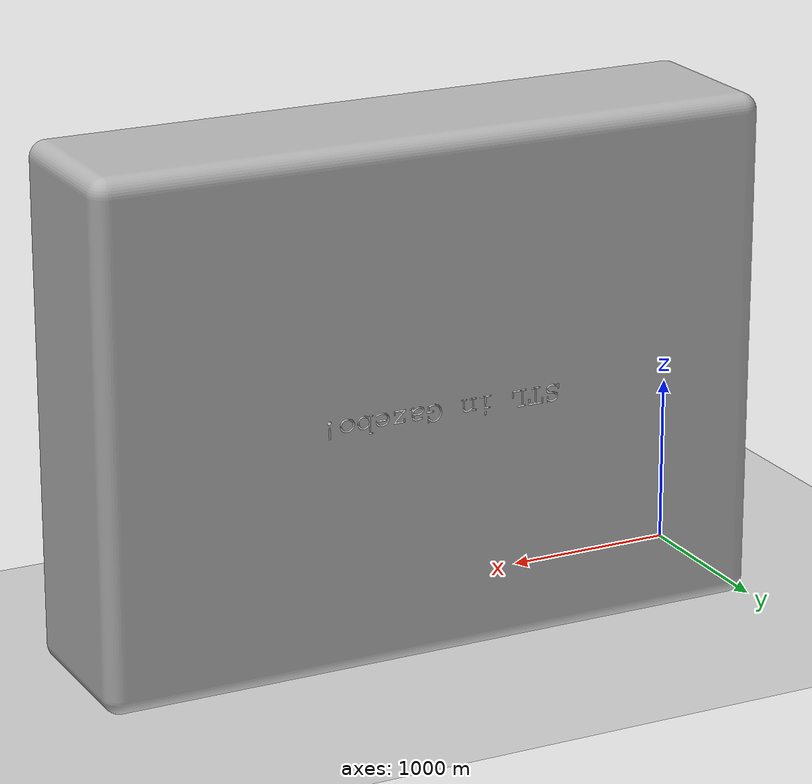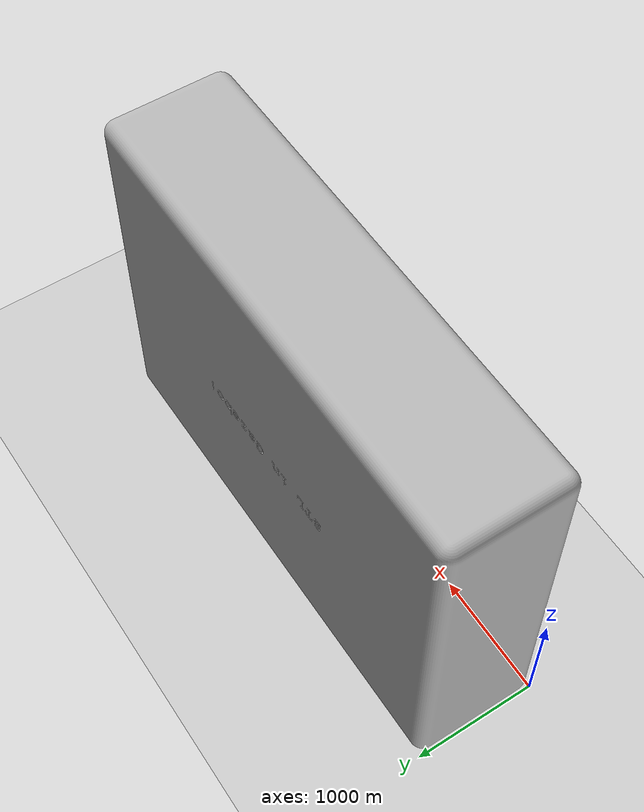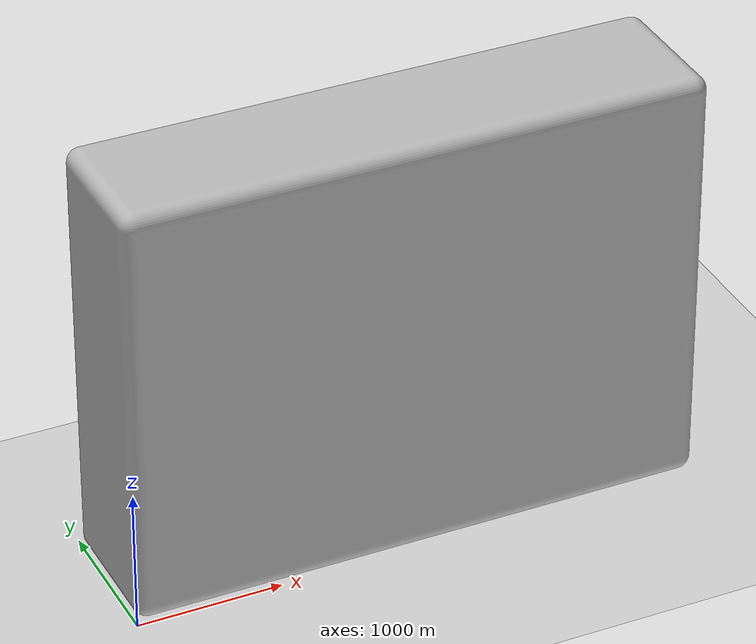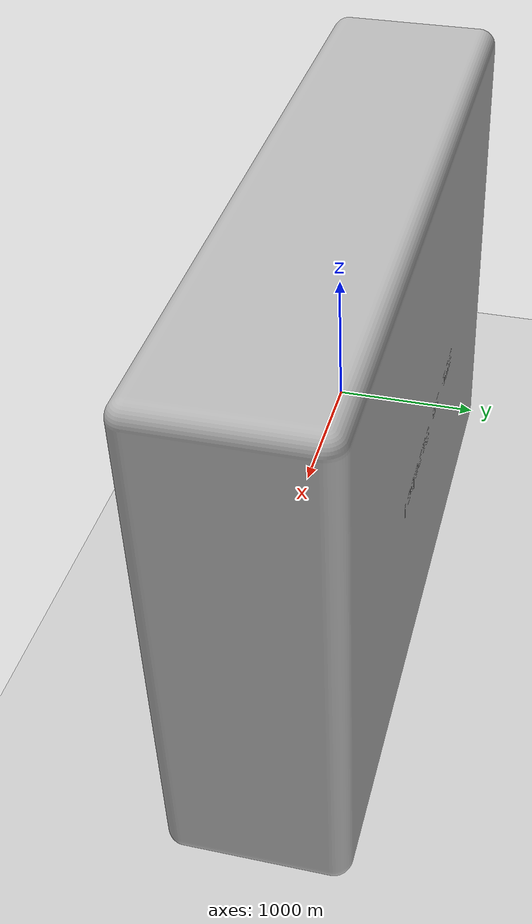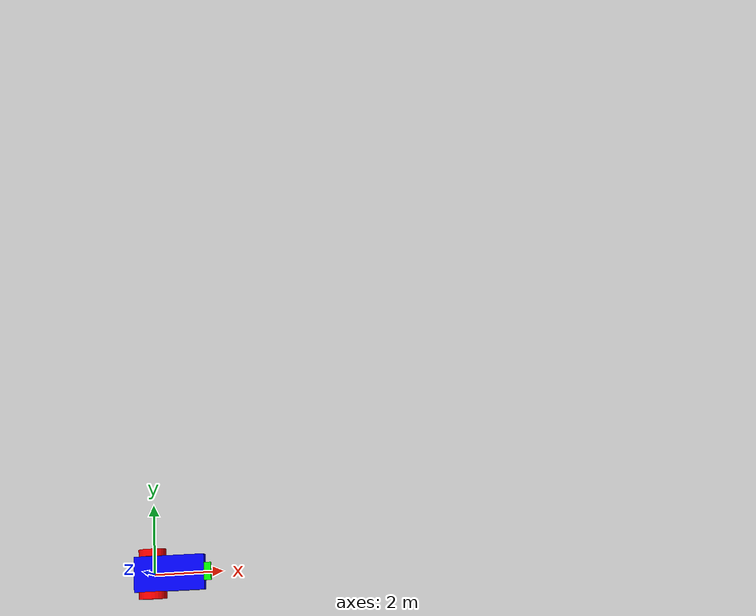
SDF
<sdf version="1.10">
 <world name="example_world">
  <physics name="1ms" type="ignored">
   <max_step_size>0.001</max_step_size>
   <real_time_factor>1.0</real_time_factor>
  </physics>
  <plugin filename="gz-sim-physics-system" name="gz::sim::systems::Physics"/>
  <plugin filename="gz-sim-user-commands-system" name="gz::sim::systems::UserCommands"/>
  <plugin filename="gz-sim-scene-broadcaster-system" name="gz::sim::systems::SceneBroadcaster"/>
  <plugin filename="gz-sim-sensors-system" name="gz::sim::systems::Sensors"/>
  <plugin filename="gz-sim-triggered-publisher-system" name="gz::sim::systems::TriggeredPublisher">
   <input type="gz.msgs.Int32" topic="/keyboard/keypress"><match field="data">16777235</match></input>
   <output type="gz.msgs.Twist" topic="/cmd_vel">linear: {x: 0.5}, angular: {z: 0.0}</output>
  </plugin>
  <plugin filename="gz-sim-triggered-publisher-system" name="gz::sim::systems::TriggeredPublisher">
   <input type="gz.msgs.Int32" topic="/keyboard/keypress"><match field="data">16777237</match></input>
   <output type="gz.msgs.Twist" topic="/cmd_vel">linear: {x: -0.5}, angular: {z: 0.0}</output>
  </plugin>
  <plugin filename="gz-sim-triggered-publisher-system" name="gz::sim::systems::TriggeredPublisher">
   <input type="gz.msgs.Int32" topic="/keyboard/keypress"><match field="data">16777234</match></input>
   <output type="gz.msgs.Twist" topic="/cmd_vel">linear: {x: 0}, angular: {z: 0.5}</output>
  </plugin>
  <plugin filename="gz-sim-triggered-publisher-system" name="gz::sim::systems::TriggeredPublisher">
   <input type="gz.msgs.Int32" topic="/keyboard/keypress"><match field="data">16777236</match></input>
   <output type="gz.msgs.Twist" topic="/cmd_vel">linear: {x: 0}, angular: {z: -0.5}</output>
  </plugin>
  <light type="directional" name="sun">
   <pose>0 0 10 0 0 0</pose>
   <diffuse>0.8 0.8 0.8 1</diffuse>
   <specular>0.2 0.2 0.2 1</specular>
   <attenuation>
    <range>1000</range>
    <constant>0.9</constant>
    <linear>0.01</linear>
    <quadratic>0.001</quadratic>
   </attenuation>
   <direction>-0.5 0.1 -0.9</direction>
  </light>
  <model name="ground_plane">
   <static>true</static>
   <link name="link">
    <collision name="collision"><geometry><plane><normal>0 0 1</normal></plane></geometry></collision>
    <visual name="visual">
     <geometry><plane><normal>0 0 1</normal><size>100 100</size></plane></geometry>
     <material>
      <ambient>0.8 0.8 0.8 1</ambient>
      <diffuse>0.8 0.8 0.8 1</diffuse>
      <specular>0.8 0.8 0.8 1</specular>
     </material>
    </visual>
   </link>
  </model>
  <model name="vehicle_blue" canonical_link="chassis">
   <plugin filename="gz-sim-diff-drive-system" name="gz::sim::systems::DiffDrive">
    <left_joint>left_wheel_joint</left_joint>
    <right_joint>right_wheel_joint</right_joint>
    <wheel_separation>1.2</wheel_separation>
    <wheel_radius>0.4</wheel_radius>
    <odom_publish_frequency>1</odom_publish_frequency>
    <topic>cmd_vel</topic>
   </plugin>
   <pose relative_to="world">0 0 0 0 0 0</pose>
   <link name="chassis">
    <pose relative_to="__model__">0.5 0 0.4 0 0 0</pose>
    <inertial>
     <mass>1.14395</mass>
     <inertia>
      <ixx>0.095329</ixx>
      <ixy>0</ixy>
      <ixz>0</ixz>
      <iyy>0.381317</iyy>
      <iyz>0</iyz>
      <izz>0.476646</izz>
     </inertia>
    </inertial>
    <visual name="visual">
     <geometry><box><size>2.0 1.0 0.5</size></box></geometry>
     <material>
      <ambient>0.0 0.0 1.0 1</ambient>
      <diffuse>0.0 0.0 1.0 1</diffuse>
      <specular>0.0 0.0 1.0 1</specular>
     </material>
    </visual>
    <collision name="collision"><geometry><box><size>2.0 1.0 0.5</size></box></geometry></collision>
   </link>
   <link name="left_wheel">
    <pose relative_to="chassis">-0.5 0.6 0 -1.5707 0 0</pose>
    <inertial>
     <mass>1</mass>
     <inertia><ixx>0.043333</ixx><ixy>0</ixy><ixz>0</ixz><iyy>0.043333</iyy><iyz>0</iyz><izz>0.08</izz></inertia>
    </inertial>
    <visual name="visual">
     <geometry><cylinder><radius>0.4</radius><length>0.2</length></cylinder></geometry>
     <material>
      <ambient>1.0 0.0 0.0 1</ambient>
      <diffuse>1.0 0.0 0.0 1</diffuse>
      <specular>1.0 0.0 0.0 1</specular>
     </material>
    </visual>
    <collision name="collision">
     <geometry><cylinder><radius>0.4</radius><length>0.2</length></cylinder></geometry>
    </collision>
   </link>
   <link name="right_wheel">
    <pose relative_to="chassis">-0.5 -0.6 0 -1.5707 0 0</pose>
    <inertial>
     <mass>1</mass>
     <inertia><ixx>0.043333</ixx><ixy>0</ixy><ixz>0</ixz><iyy>0.043333</iyy><iyz>0</iyz><izz>0.08</izz></inertia>
    </inertial>
    <visual name="visual">
     <geometry><cylinder><radius>0.4</radius><length>0.2</length></cylinder></geometry>
     <material>
      <ambient>1.0 0.0 0.0 1</ambient>
      <diffuse>1.0 0.0 0.0 1</diffuse>
      <specular>1.0 0.0 0.0 1</specular>
     </material>
    </visual>
    <collision name="collision">
     <geometry><cylinder><radius>0.4</radius><length>0.2</length></cylinder></geometry>
    </collision>
   </link>
   <frame name="caster_frame" attached_to="chassis"><pose>0.8 0 -0.2 0 0 0</pose></frame>
   <link name="caster">
    <pose relative_to="caster_frame"/>
    <inertial>
     <mass>1</mass>
     <inertia><ixx>0.016</ixx><ixy>0</ixy><ixz>0</ixz><iyy>0.016</iyy><iyz>0</iyz><izz>0.016</izz></inertia>
    </inertial>
    <visual name="visual">
     <geometry><sphere><radius>0.2</radius></sphere></geometry>
     <material>
      <ambient>0.0 1 0.0 1</ambient>
      <diffuse>0.0 1 0.0 1</diffuse>
      <specular>0.0 1 0.0 1</specular>
     </material>
    </visual>
    <collision name="collision"><geometry><sphere><radius>0.2</radius></sphere></geometry></collision>
   </link>
   <link name="camera_link">
    <pose relative_to="__model__">1.6 0 0.6 0 0 0</pose>
    <visual name="visual">
     <geometry><box><size>0.2 0.5 0.2</size></box></geometry>
     <material>
      <ambient>0.0 1.0 0.0 1</ambient>
      <diffuse>0.0 1.0 0.0 1</diffuse>
      <specular>0.0 1.0 0.0 1</specular>
     </material>
    </visual>
    <collision name="collision"><geometry><box><size>0.2 0.5 0.2</size></box></geometry></collision>
    <sensor name="camera" type="camera">
     <camera>
      <horizontal_fov>1.047</horizontal_fov>
      <image><width>320</width><height>240</height></image>
      <clip><near>0.1</near><far>100.0</far></clip>
     </camera>
     <always_on>1</always_on>
     <update_rate>30</update_rate>
     <visualize>true</visualize>
    </sensor>
    <sensor name="depth_camera" type="depth">
     <horizontal_fov>1.047</horizontal_fov>
     <image><width>320</width><height>240</height></image>
     <clip><near>0.1</near><far>100.0</far></clip>
     <always_on>1</always_on>
     <update_rate>30</update_rate>
     <visualize>true</visualize>
    </sensor>
   </link>
   <joint name="left_wheel_joint" type="revolute">
    <pose relative_to="left_wheel"/>
    <parent>chassis</parent>
    <child>left_wheel</child>
    <axis>
     <xyz expressed_in="__model__">0 1 0</xyz>
     <limit><lower>-1.79769e+308</lower><upper>1.79769e+308</upper></limit>
    </axis>
   </joint>
   <joint name="right_wheel_joint" type="revolute">
    <pose relative_to="right_wheel"/>
    <parent>chassis</parent>
    <child>right_wheel</child>
    <axis>
     <xyz expressed_in="__model__">0 1 0</xyz>
     <limit><lower>-1.79769e+308</lower><upper>1.79769e+308</upper></limit>
    </axis>
   </joint>
   <joint name="caster_wheel" type="ball"><parent>chassis</parent><child>caster</child></joint>
   <joint name="camera_joint" type="fixed"><parent>chassis</parent><child>camera_link</child></joint>
  </model>
  <include><name>STL_GZ</name><pose>5 3 0 0 0 0</pose><uri>model://STL_GZ</uri></include>
 </world>
</sdf>

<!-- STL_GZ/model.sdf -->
<sdf version="1.6">
  <model name='STL_GZ'>
    <static>true</static>
    <link name="body">
      <pose>0 0 0 0 0 0</pose>

        <visual name="visual">
          <geometry>
            <mesh><uri>model://STL_GZ/meshes/STL_GZ.STL</uri></mesh>
          </geometry>
        </visual>

        <collision name="collision">
          <geometry>
            <mesh><uri>model://STL_GZ/meshes/STL_GZ.STL</uri></mesh>
          </geometry>
        </collision>

        <!-- TODO: Replace with accurate values of mass and inertia -->
        <inertial>
          <mass>1.0</mass>
          <inertia>
            <ixx>0.003366666666666667</ixx>
            <ixy>0</ixy>
            <ixz>0</ixz>
            <iyy>0.0008666666666666667</iyy>
            <iyz>0</iyz>
            <izz>0.0041666666666666675</izz>
          </inertia>
        </inertial>
    </link>
  </model>
</sdf>
